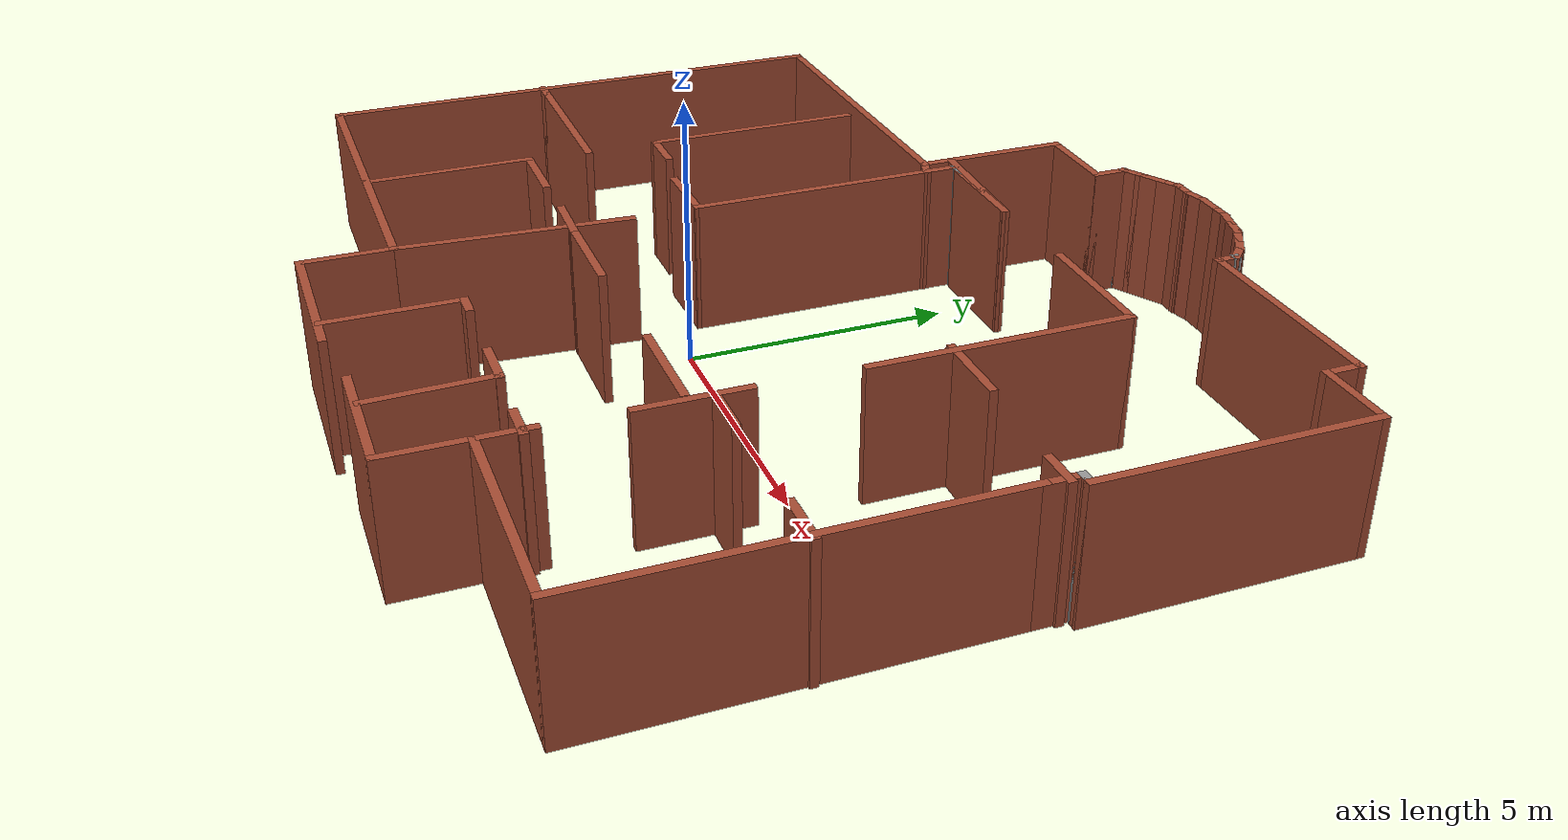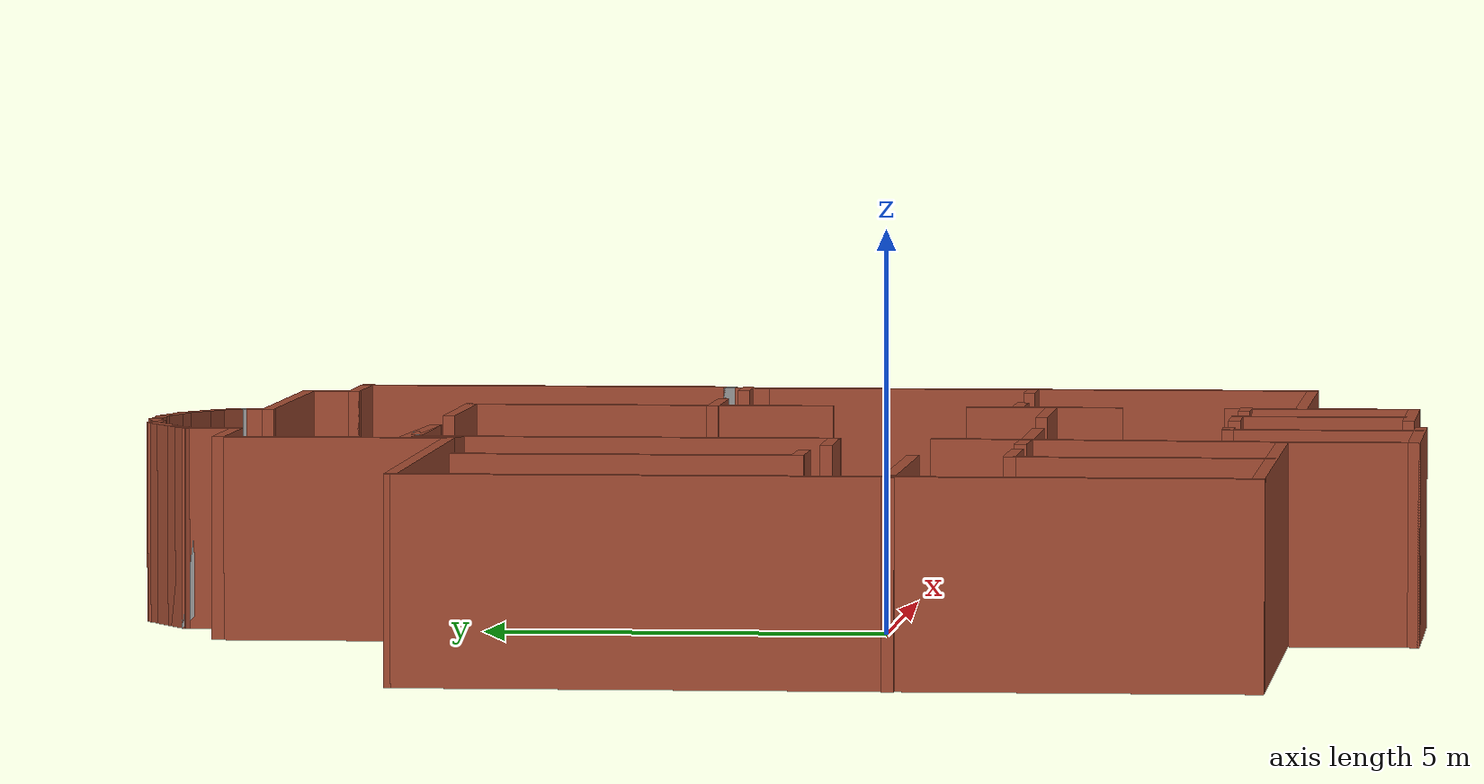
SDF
<?xml version='1.0'?>
<sdf version='1.6'>
  <model name='house'>
    <pose frame=''>0.638988 1.42948 0 0 -0 0</pose>
    <link name='Wall_10'>
      <collision name='Wall_10_Collision'>
        <geometry>
          <box>
            <size>2.5 0.15 2.5</size>
          </box>
        </geometry>
        <pose frame=''>0 0 1.25 0 -0 0</pose>
      </collision>
      <visual name='Wall_10_Visual'>
        <pose frame=''>0 0 1.25 0 -0 0</pose>
        <geometry>
          <box>
            <size>2.5 0.15 2.5</size>
          </box>
        </geometry>
        <material>
          <script>
            <uri>file://media/materials/scripts/gazebo.material</uri>
            <name>Gazebo/Bricks</name>
          </script>
          <ambient>1 1 1 1</ambient>
        </material>
        <meta>
          <layer>0</layer>
        </meta>
      </visual>
      <pose frame=''>4.57287 -6.59565 0 0 -0 1.5708</pose>
    </link>
    <link name='Wall_12'>
      <collision name='Wall_12_Collision'>
        <geometry>
          <box>
            <size>4 0.15 2.5</size>
          </box>
        </geometry>
        <pose frame=''>0 0 1.25 0 -0 0</pose>
      </collision>
      <visual name='Wall_12_Visual'>
        <pose frame=''>0 0 1.25 0 -0 0</pose>
        <geometry>
          <box>
            <size>4 0.15 2.5</size>
          </box>
        </geometry>
        <material>
          <script>
            <uri>file://media/materials/scripts/gazebo.material</uri>
            <name>Gazebo/Bricks</name>
          </script>
          <ambient>1 1 1 1</ambient>
        </material>
        <meta>
          <layer>0</layer>
        </meta>
      </visual>
      <pose frame=''>6.50485 -6.32832 0 0 -0 0</pose>
    </link>
    <link name='Wall_13'>
      <collision name='Wall_13_Collision'>
        <geometry>
          <box>
            <size>7.25 0.15 2.5</size>
          </box>
        </geometry>
        <pose frame=''>0 0 1.25 0 -0 0</pose>
      </collision>
      <visual name='Wall_13_Visual'>
        <pose frame=''>0 0 1.25 0 -0 0</pose>
        <geometry>
          <box>
            <size>7.25 0.15 2.5</size>
          </box>
        </geometry>
        <material>
          <script>
            <uri>file://media/materials/scripts/gazebo.material</uri>
            <name>Gazebo/Bricks</name>
          </script>
          <ambient>1 1 1 1</ambient>
        </material>
        <meta>
          <layer>0</layer>
        </meta>
      </visual>
      <pose frame=''>8.42985 -2.77832 0 0 -0 1.5708</pose>
    </link>
    <link name='Wall_16'>
      <collision name='Wall_16_Collision'>
        <geometry>
          <box>
            <size>0.75 0.15 2.5</size>
          </box>
        </geometry>
        <pose frame=''>0 0 1.25 0 -0 0</pose>
      </collision>
      <visual name='Wall_16_Visual'>
        <pose frame=''>0 0 1.25 0 -0 0</pose>
        <geometry>
          <box>
            <size>0.75 0.15 2.5</size>
          </box>
        </geometry>
        <material>
          <script>
            <uri>file://media/materials/scripts/gazebo.material</uri>
            <name>Gazebo/Bricks</name>
          </script>
          <ambient>1 1 1 1</ambient>
        </material>
        <meta>
          <layer>0</layer>
        </meta>
      </visual>
      <pose frame=''>8.42985 1.07168 0 0 -0 1.5708</pose>
    </link>
    <link name='Wall_17'>
      <collision name='Wall_17_Collision'>
        <geometry>
          <box>
            <size>0.25 0.15 2.5</size>
          </box>
        </geometry>
        <pose frame=''>0 0 1.25 0 -0 0</pose>
      </collision>
      <visual name='Wall_17_Visual'>
        <pose frame=''>0 0 1.25 0 -0 0</pose>
        <geometry>
          <box>
            <size>0.25 0.15 2.5</size>
          </box>
        </geometry>
        <material>
          <script>
            <uri>file://media/materials/scripts/gazebo.material</uri>
            <name>Gazebo/Grey</name>
          </script>
          <ambient>1 1 1 1</ambient>
        </material>
        <meta>
          <layer>0</layer>
        </meta>
      </visual>
      <pose frame=''>8.47985 1.37168 0 0 -0 0</pose>
    </link>
    <link name='Wall_18'>
      <collision name='Wall_18_Collision'>
        <geometry>
          <box>
            <size>0.25 0.15 2.5</size>
          </box>
        </geometry>
        <pose frame=''>0 0 1.25 0 -0 0</pose>
      </collision>
      <visual name='Wall_18_Visual'>
        <pose frame=''>0 0 1.25 0 -0 0</pose>
        <geometry>
          <box>
            <size>0.25 0.15 2.5</size>
          </box>
        </geometry>
        <material>
          <script>
            <uri>file://media/materials/scripts/gazebo.material</uri>
            <name>Gazebo/Bricks</name>
          </script>
          <ambient>1 1 1 1</ambient>
        </material>
        <meta>
          <layer>0</layer>
        </meta>
      </visual>
      <pose frame=''>8.57985 1.37168 0 0 -0 0</pose>
    </link>
    <link name='Wall_19'>
      <collision name='Wall_19_Collision'>
        <geometry>
          <box>
            <size>5 0.15 2.5</size>
          </box>
        </geometry>
        <pose frame=''>0 0 1.25 0 -0 0</pose>
      </collision>
      <visual name='Wall_19_Visual'>
        <pose frame=''>0 0 1.25 0 -0 0</pose>
        <geometry>
          <box>
            <size>5 0.15 2.5</size>
          </box>
        </geometry>
        <material>
          <script>
            <uri>file://media/materials/scripts/gazebo.material</uri>
            <name>Gazebo/Bricks</name>
          </script>
          <ambient>1 1 1 1</ambient>
        </material>
        <meta>
          <layer>0</layer>
        </meta>
      </visual>
      <pose frame=''>8.62985 3.79668 0 0 -0 1.5708</pose>
    </link>
    <link name='Wall_2'>
      <collision name='Wall_2_Collision'>
        <geometry>
          <box>
            <size>10.25 0.15 2.5</size>
          </box>
        </geometry>
        <pose frame=''>0 0 1.25 0 -0 0</pose>
      </collision>
      <visual name='Wall_2_Visual'>
        <pose frame=''>0 0 1.25 0 -0 0</pose>
        <geometry>
          <box>
            <size>10.25 0.15 2.5</size>
          </box>
        </geometry>
        <material>
          <script>
            <uri>file://media/materials/scripts/gazebo.material</uri>
            <name>Gazebo/Bricks</name>
          </script>
          <ambient>1 1 1 1</ambient>
        </material>
        <meta>
          <layer>0</layer>
        </meta>
      </visual>
      <pose frame=''>-8.57701 -1.31719 0 0 -0 -1.5708</pose>
    </link>
    <link name='Wall_20'>
      <collision name='Wall_20_Collision'>
        <geometry>
          <box>
            <size>1.5 0.15 2.5</size>
          </box>
        </geometry>
        <pose frame=''>0 0 1.25 0 -0 0</pose>
      </collision>
      <visual name='Wall_20_Visual'>
        <pose frame=''>0 0 1.25 0 -0 0</pose>
        <geometry>
          <box>
            <size>1.5 0.15 2.5</size>
          </box>
        </geometry>
        <material>
          <script>
            <uri>file://media/materials/scripts/gazebo.material</uri>
            <name>Gazebo/Bricks</name>
          </script>
          <ambient>1 1 1 1</ambient>
        </material>
        <meta>
          <layer>0</layer>
        </meta>
      </visual>
      <pose frame=''>7.95485 6.22168 0 0 -0 3.14159</pose>
    </link>
    <link name='Wall_21'>
      <collision name='Wall_21_Collision'>
        <geometry>
          <box>
            <size>0.75 0.15 2.5</size>
          </box>
        </geometry>
        <pose frame=''>0 0 1.25 0 -0 0</pose>
      </collision>
      <visual name='Wall_21_Visual'>
        <pose frame=''>0 0 1.25 0 -0 0</pose>
        <geometry>
          <box>
            <size>0.75 0.15 2.5</size>
          </box>
        </geometry>
        <material>
          <script>
            <uri>file://media/materials/scripts/gazebo.material</uri>
            <name>Gazebo/Bricks</name>
          </script>
          <ambient>1 1 1 1</ambient>
        </material>
        <meta>
          <layer>0</layer>
        </meta>
      </visual>
      <pose frame=''>7.27985 6.52168 0 0 -0 1.5708</pose>
    </link>
    <link name='Wall_22'>
      <collision name='Wall_22_Collision'>
        <geometry>
          <box>
            <size>4 0.15 2.5</size>
          </box>
        </geometry>
        <pose frame=''>0 0 1.25 0 -0 0</pose>
      </collision>
      <visual name='Wall_22_Visual'>
        <pose frame=''>0 0 1.25 0 -0 0</pose>
        <geometry>
          <box>
            <size>4 0.15 2.5</size>
          </box>
        </geometry>
        <material>
          <script>
            <uri>file://media/materials/scripts/gazebo.material</uri>
            <name>Gazebo/Bricks</name>
          </script>
          <ambient>1 1 1 1</ambient>
        </material>
        <meta>
          <layer>0</layer>
        </meta>
      </visual>
      <pose frame=''>5.35485 6.82168 0 0 -0 3.14159</pose>
    </link>
    <link name='Wall_23'>
      <collision name='Wall_23_Collision'>
        <geometry>
          <box>
            <size>0.5 0.15 2.5</size>
          </box>
        </geometry>
        <pose frame=''>0 0 1.25 0 -0 0</pose>
      </collision>
      <visual name='Wall_23_Visual'>
        <pose frame=''>0 0 1.25 0 -0 0</pose>
        <geometry>
          <box>
            <size>0.5 0.15 2.5</size>
          </box>
        </geometry>
        <material>
          <script>
            <uri>file://media/materials/scripts/gazebo.material</uri>
            <name>Gazebo/Bricks</name>
          </script>
          <ambient>1 1 1 1</ambient>
        </material>
        <meta>
          <layer>0</layer>
        </meta>
      </visual>
      <pose frame=''>3.42985 6.99668 0 0 -0 1.5708</pose>
    </link>
    <link name='Wall_24'>
      <collision name='Wall_24_Collision'>
        <geometry>
          <box>
            <size>0.15 0.15 2.5</size>
          </box>
        </geometry>
        <pose frame=''>0 0 1.25 0 -0 0</pose>
      </collision>
      <visual name='Wall_24_Visual'>
        <pose frame=''>0 0 1.25 0 -0 0</pose>
        <geometry>
          <box>
            <size>0.15 0.15 2.5</size>
          </box>
        </geometry>
        <material>
          <script>
            <uri>file://media/materials/scripts/gazebo.material</uri>
            <name>Gazebo/Grey</name>
          </script>
          <ambient>1 1 1 1</ambient>
        </material>
        <meta>
          <layer>0</layer>
        </meta>
      </visual>
      <pose frame=''>3.42985 7.17168 0 0 -0 0</pose>
    </link>
    <link name='Wall_26'>
      <collision name='Wall_26_Collision'>
        <geometry>
          <box>
            <size>0.15 0.15 2.5</size>
          </box>
        </geometry>
        <pose frame=''>0 0 1.25 0 -0 0</pose>
      </collision>
      <visual name='Wall_26_Visual'>
        <pose frame=''>0 0 1.25 0 -0 0</pose>
        <geometry>
          <box>
            <size>0.15 0.15 2.5</size>
          </box>
        </geometry>
        <material>
          <script>
            <uri>file://media/materials/scripts/gazebo.material</uri>
            <name>Gazebo/Bricks</name>
          </script>
          <ambient>1 1 1 1</ambient>
        </material>
        <meta>
          <layer>0</layer>
        </meta>
      </visual>
      <pose frame=''>3.42985 7.17168 0 0 -0 0</pose>
    </link>
    <link name='Wall_27'>
      <collision name='Wall_27_Collision'>
        <geometry>
          <box>
            <size>0.5 0.15 2.5</size>
          </box>
        </geometry>
        <pose frame=''>0 0 1.25 0 -0 0</pose>
      </collision>
      <visual name='Wall_27_Visual'>
        <pose frame=''>0 0 1.25 0 -0 0</pose>
        <geometry>
          <box>
            <size>0.5 0.15 2.5</size>
          </box>
        </geometry>
        <material>
          <script>
            <uri>file://media/materials/scripts/gazebo.material</uri>
            <name>Gazebo/Bricks</name>
          </script>
          <ambient>1 1 1 1</ambient>
        </material>
        <meta>
          <layer>0</layer>
        </meta>
      </visual>
      <pose frame=''>3.3061 7.29542 0 0 -0 2.35619</pose>
    </link>
    <link name='Wall_28'>
      <collision name='Wall_28_Collision'>
        <geometry>
          <box>
            <size>0.5 0.15 2.5</size>
          </box>
        </geometry>
        <pose frame=''>0 0 1.25 0 -0 0</pose>
      </collision>
      <visual name='Wall_28_Visual'>
        <pose frame=''>0 0 1.25 0 -0 0</pose>
        <geometry>
          <box>
            <size>0.5 0.15 2.5</size>
          </box>
        </geometry>
        <material>
          <script>
            <uri>file://media/materials/scripts/gazebo.material</uri>
            <name>Gazebo/Bricks</name>
          </script>
          <ambient>1 1 1 1</ambient>
        </material>
        <meta>
          <layer>0</layer>
        </meta>
      </visual>
      <pose frame=''>3.03081 7.50667 0 0 -0 2.61799</pose>
    </link>
    <link name='Wall_29'>
      <collision name='Wall_29_Collision'>
        <geometry>
          <box>
            <size>0.5 0.15 2.5</size>
          </box>
        </geometry>
        <pose frame=''>0 0 1.25 0 -0 0</pose>
      </collision>
      <visual name='Wall_29_Visual'>
        <pose frame=''>0 0 1.25 0 -0 0</pose>
        <geometry>
          <box>
            <size>0.5 0.15 2.5</size>
          </box>
        </geometry>
        <material>
          <script>
            <uri>file://media/materials/scripts/gazebo.material</uri>
            <name>Gazebo/Bricks</name>
          </script>
          <ambient>1 1 1 1</ambient>
        </material>
        <meta>
          <layer>0</layer>
        </meta>
      </visual>
      <pose frame=''>2.7277 7.68167 0 0 -0 2.61799</pose>
    </link>
    <link name='Wall_3'>
      <collision name='Wall_3_Collision'>
        <geometry>
          <box>
            <size>6.75 0.15 2.5</size>
          </box>
        </geometry>
        <pose frame=''>0 0 1.25 0 -0 0</pose>
      </collision>
      <visual name='Wall_3_Visual'>
        <pose frame=''>0 0 1.25 0 -0 0</pose>
        <geometry>
          <box>
            <size>6.75 0.15 2.5</size>
          </box>
        </geometry>
        <material>
          <script>
            <uri>file://media/materials/scripts/gazebo.material</uri>
            <name>Gazebo/Bricks</name>
          </script>
          <ambient>1 1 1 1</ambient>
        </material>
        <meta>
          <layer>0</layer>
        </meta>
      </visual>
      <pose frame=''>-5.27701 -6.36719 0 0 -0 0</pose>
    </link>
    <link name='Wall_31'>
      <collision name='Wall_31_Collision'>
        <geometry>
          <box>
            <size>0.5 0.15 2.5</size>
          </box>
        </geometry>
        <pose frame=''>0 0 1.25 0 -0 0</pose>
      </collision>
      <visual name='Wall_31_Visual'>
        <pose frame=''>0 0 1.25 0 -0 0</pose>
        <geometry>
          <box>
            <size>0.5 0.15 2.5</size>
          </box>
        </geometry>
        <material>
          <script>
            <uri>file://media/materials/scripts/gazebo.material</uri>
            <name>Gazebo/Bricks</name>
          </script>
          <ambient>1 1 1 1</ambient>
        </material>
        <meta>
          <layer>0</layer>
        </meta>
      </visual>
      <pose frame=''>2.40711 7.81446 0 0 -0 2.87979</pose>
    </link>
    <link name='Wall_32'>
      <collision name='Wall_32_Collision'>
        <geometry>
          <box>
            <size>0.5 0.15 2.5</size>
          </box>
        </geometry>
        <pose frame=''>0 0 1.25 0 -0 0</pose>
      </collision>
      <visual name='Wall_32_Visual'>
        <pose frame=''>0 0 1.25 0 -0 0</pose>
        <geometry>
          <box>
            <size>0.5 0.15 2.5</size>
          </box>
        </geometry>
        <material>
          <script>
            <uri>file://media/materials/scripts/gazebo.material</uri>
            <name>Gazebo/Bricks</name>
          </script>
          <ambient>1 1 1 1</ambient>
        </material>
        <meta>
          <layer>0</layer>
        </meta>
      </visual>
      <pose frame=''>2.06903 7.90505 0 0 -0 2.87979</pose>
    </link>
    <link name='Wall_33'>
      <collision name='Wall_33_Collision'>
        <geometry>
          <box>
            <size>0.5 0.15 2.5</size>
          </box>
        </geometry>
        <pose frame=''>0 0 1.25 0 -0 0</pose>
      </collision>
      <visual name='Wall_33_Visual'>
        <pose frame=''>0 0 1.25 0 -0 0</pose>
        <geometry>
          <box>
            <size>0.5 0.15 2.5</size>
          </box>
        </geometry>
        <material>
          <script>
            <uri>file://media/materials/scripts/gazebo.material</uri>
            <name>Gazebo/Bricks</name>
          </script>
          <ambient>1 1 1 1</ambient>
        </material>
        <meta>
          <layer>0</layer>
        </meta>
      </visual>
      <pose frame=''>1.72499 7.95034 0 0 -0 3.14159</pose>
    </link>
    <link name='Wall_34'>
      <collision name='Wall_34_Collision'>
        <geometry>
          <box>
            <size>0.5 0.15 2.5</size>
          </box>
        </geometry>
        <pose frame=''>0 0 1.25 0 -0 0</pose>
      </collision>
      <visual name='Wall_34_Visual'>
        <pose frame=''>0 0 1.25 0 -0 0</pose>
        <geometry>
          <box>
            <size>0.5 0.15 2.5</size>
          </box>
        </geometry>
        <material>
          <script>
            <uri>file://media/materials/scripts/gazebo.material</uri>
            <name>Gazebo/Bricks</name>
          </script>
          <ambient>1 1 1 1</ambient>
        </material>
        <meta>
          <layer>0</layer>
        </meta>
      </visual>
      <pose frame=''>1.37499 7.95034 0 0 -0 3.14159</pose>
    </link>
    <link name='Wall_35'>
      <collision name='Wall_35_Collision'>
        <geometry>
          <box>
            <size>0.5 0.15 2.5</size>
          </box>
        </geometry>
        <pose frame=''>0 0 1.25 0 -0 0</pose>
      </collision>
      <visual name='Wall_35_Visual'>
        <pose frame=''>0 0 1.25 0 -0 0</pose>
        <geometry>
          <box>
            <size>0.5 0.15 2.5</size>
          </box>
        </geometry>
        <material>
          <script>
            <uri>file://media/materials/scripts/gazebo.material</uri>
            <name>Gazebo/Bricks</name>
          </script>
          <ambient>1 1 1 1</ambient>
        </material>
        <meta>
          <layer>0</layer>
        </meta>
      </visual>
      <pose frame=''>1.03096 7.90505 0 0 -0 -2.87979</pose>
    </link>
    <link name='Wall_36'>
      <collision name='Wall_36_Collision'>
        <geometry>
          <box>
            <size>0.5 0.15 2.5</size>
          </box>
        </geometry>
        <pose frame=''>0 0 1.25 0 -0 0</pose>
      </collision>
      <visual name='Wall_36_Visual'>
        <pose frame=''>0 0 1.25 0 -0 0</pose>
        <geometry>
          <box>
            <size>0.5 0.15 2.5</size>
          </box>
        </geometry>
        <material>
          <script>
            <uri>file://media/materials/scripts/gazebo.material</uri>
            <name>Gazebo/Bricks</name>
          </script>
          <ambient>1 1 1 1</ambient>
        </material>
        <meta>
          <layer>0</layer>
        </meta>
      </visual>
      <pose frame=''>0.686921 7.85975 0 0 -0 3.14159</pose>
    </link>
    <link name='Wall_37'>
      <collision name='Wall_37_Collision'>
        <geometry>
          <box>
            <size>0.5 0.15 2.5</size>
          </box>
        </geometry>
        <pose frame=''>0 0 1.25 0 -0 0</pose>
      </collision>
      <visual name='Wall_37_Visual'>
        <pose frame=''>0 0 1.25 0 -0 0</pose>
        <geometry>
          <box>
            <size>0.5 0.15 2.5</size>
          </box>
        </geometry>
        <material>
          <script>
            <uri>file://media/materials/scripts/gazebo.material</uri>
            <name>Gazebo/Bricks</name>
          </script>
          <ambient>1 1 1 1</ambient>
        </material>
        <meta>
          <layer>0</layer>
        </meta>
      </visual>
      <pose frame=''>0.360366 7.77225 0 0 -0 -2.61799</pose>
    </link>
    <link name='Wall_38'>
      <collision name='Wall_38_Collision'>
        <geometry>
          <box>
            <size>0.5 0.15 2.5</size>
          </box>
        </geometry>
        <pose frame=''>0 0 1.25 0 -0 0</pose>
      </collision>
      <visual name='Wall_38_Visual'>
        <pose frame=''>0 0 1.25 0 -0 0</pose>
        <geometry>
          <box>
            <size>0.5 0.15 2.5</size>
          </box>
        </geometry>
        <material>
          <script>
            <uri>file://media/materials/scripts/gazebo.material</uri>
            <name>Gazebo/Bricks</name>
          </script>
          <ambient>1 1 1 1</ambient>
        </material>
        <meta>
          <layer>0</layer>
        </meta>
      </visual>
      <pose frame=''>0.057257 7.59725 0 0 -0 -2.61799</pose>
    </link>
    <link name='Wall_39'>
      <collision name='Wall_39_Collision'>
        <geometry>
          <box>
            <size>0.25 0.15 2.5</size>
          </box>
        </geometry>
        <pose frame=''>0 0 1.25 0 -0 0</pose>
      </collision>
      <visual name='Wall_39_Visual'>
        <pose frame=''>0 0 1.25 0 -0 0</pose>
        <geometry>
          <box>
            <size>0.25 0.15 2.5</size>
          </box>
        </geometry>
        <material>
          <script>
            <uri>file://media/materials/scripts/gazebo.material</uri>
            <name>Gazebo/Bricks</name>
          </script>
          <ambient>1 1 1 1</ambient>
        </material>
        <meta>
          <layer>0</layer>
        </meta>
      </visual>
      <pose frame=''>-0.137599 7.48475 0 0 -0 -2.61799</pose>
    </link>
    <link name='Wall_4'>
      <collision name='Wall_4_Collision'>
        <geometry>
          <box>
            <size>1.75 0.15 2.5</size>
          </box>
        </geometry>
        <pose frame=''>0 0 1.25 0 -0 0</pose>
      </collision>
      <visual name='Wall_4_Visual'>
        <pose frame=''>0 0 1.25 0 -0 0</pose>
        <geometry>
          <box>
            <size>1.75 0.15 2.5</size>
          </box>
        </geometry>
        <material>
          <script>
            <uri>file://media/materials/scripts/gazebo.material</uri>
            <name>Gazebo/Bricks</name>
          </script>
          <ambient>1 1 1 1</ambient>
        </material>
        <meta>
          <layer>0</layer>
        </meta>
      </visual>
      <pose frame=''>-1.97701 -7.1672 0 0 -0 -1.5708</pose>
    </link>
    <link name='Wall_40'>
      <collision name='Wall_40_Collision'>
        <geometry>
          <box>
            <size>0.5 0.15 2.5</size>
          </box>
        </geometry>
        <pose frame=''>0 0 1.25 0 -0 0</pose>
      </collision>
      <visual name='Wall_40_Visual'>
        <pose frame=''>0 0 1.25 0 -0 0</pose>
        <geometry>
          <box>
            <size>0.5 0.15 2.5</size>
          </box>
        </geometry>
        <material>
          <script>
            <uri>file://media/materials/scripts/gazebo.material</uri>
            <name>Gazebo/Bricks</name>
          </script>
          <ambient>1 1 1 1</ambient>
        </material>
        <meta>
          <layer>0</layer>
        </meta>
      </visual>
      <pose frame=''>-0.332454 7.37225 0 0 -0 -2.61799</pose>
    </link>
    <link name='Wall_41'>
      <collision name='Wall_41_Collision'>
        <geometry>
          <box>
            <size>0.15 0.15 2.5</size>
          </box>
        </geometry>
        <pose frame=''>0 0 1.25 0 -0 0</pose>
      </collision>
      <visual name='Wall_41_Visual'>
        <pose frame=''>0 0 1.25 0 -0 0</pose>
        <geometry>
          <box>
            <size>0.15 0.15 2.5</size>
          </box>
        </geometry>
        <material>
          <script>
            <uri>file://media/materials/scripts/gazebo.material</uri>
            <name>Gazebo/Grey</name>
          </script>
          <ambient>1 1 1 1</ambient>
        </material>
        <meta>
          <layer>0</layer>
        </meta>
      </visual>
      <pose frame=''>-0.484009 7.28475 0 0 -0 0</pose>
    </link>
    <link name='Wall_42'>
      <collision name='Wall_42_Collision'>
        <geometry>
          <box>
            <size>0.75 0.15 2.5</size>
          </box>
        </geometry>
        <pose frame=''>0 0 1.25 0 -0 0</pose>
      </collision>
      <visual name='Wall_42_Visual'>
        <pose frame=''>0 0 1.25 0 -0 0</pose>
        <geometry>
          <box>
            <size>0.75 0.15 2.5</size>
          </box>
        </geometry>
        <material>
          <script>
            <uri>file://media/materials/scripts/gazebo.material</uri>
            <name>Gazebo/Bricks</name>
          </script>
          <ambient>1 1 1 1</ambient>
        </material>
        <meta>
          <layer>0</layer>
        </meta>
      </visual>
      <pose frame=''>-0.484009 6.98475 0 0 -0 -1.5708</pose>
    </link>
    <link name='Wall_43'>
      <collision name='Wall_43_Collision'>
        <geometry>
          <box>
            <size>1.75 0.15 2.5</size>
          </box>
        </geometry>
        <pose frame=''>0 0 1.25 0 -0 0</pose>
      </collision>
      <visual name='Wall_43_Visual'>
        <pose frame=''>0 0 1.25 0 -0 0</pose>
        <geometry>
          <box>
            <size>1.75 0.15 2.5</size>
          </box>
        </geometry>
        <material>
          <script>
            <uri>file://media/materials/scripts/gazebo.material</uri>
            <name>Gazebo/Bricks</name>
          </script>
          <ambient>1 1 1 1</ambient>
        </material>
        <meta>
          <layer>0</layer>
        </meta>
      </visual>
      <pose frame=''>-1.28401 6.68475 0 0 -0 3.14159</pose>
    </link>
    <link name='Wall_44'>
      <collision name='Wall_44_Collision'>
        <geometry>
          <box>
            <size>3 0.15 2.5</size>
          </box>
        </geometry>
        <pose frame=''>0 0 1.25 0 -0 0</pose>
      </collision>
      <visual name='Wall_44_Visual'>
        <pose frame=''>0 0 1.25 0 -0 0</pose>
        <geometry>
          <box>
            <size>3 0.15 2.5</size>
          </box>
        </geometry>
        <material>
          <script>
            <uri>file://media/materials/scripts/gazebo.material</uri>
            <name>Gazebo/Bricks</name>
          </script>
          <ambient>1 1 1 1</ambient>
        </material>
        <meta>
          <layer>0</layer>
        </meta>
      </visual>
      <pose frame=''>-2.08401 5.25975 0 0 -0 -1.5708</pose>
    </link>
    <link name='Wall_45'>
      <collision name='Wall_45_Collision'>
        <geometry>
          <box>
            <size>6.6438 0.15 2.5</size>
          </box>
        </geometry>
        <pose frame=''>0 0 1.25 0 -0 0</pose>
      </collision>
      <visual name='Wall_45_Visual'>
        <pose frame=''>0 0 1.25 0 -0 0</pose>
        <geometry>
          <box>
            <size>6.6438 0.15 2.5</size>
          </box>
        </geometry>
        <material>
          <script>
            <uri>file://media/materials/scripts/gazebo.material</uri>
            <name>Gazebo/Bricks</name>
          </script>
          <ambient>1 1 1 1</ambient>
        </material>
        <meta>
          <layer>0</layer>
        </meta>
      </visual>
      <pose frame=''>-5.33051 3.78378 0 0 -0 -3.12589</pose>
    </link>
    <link name='Wall_47'>
      <collision name='Wall_47_Collision'>
        <geometry>
          <box>
            <size>4.75 0.15 2.5</size>
          </box>
        </geometry>
        <pose frame=''>0 0 1.25 0 -0 0</pose>
      </collision>
      <visual name='Wall_47_Visual'>
        <pose frame=''>0 0 1.25 0 -0 0</pose>
        <geometry>
          <box>
            <size>4.75 0.15 2.5</size>
          </box>
        </geometry>
        <material>
          <script>
            <uri>file://media/materials/scripts/gazebo.material</uri>
            <name>Gazebo/Bricks</name>
          </script>
          <ambient>1 1 1 1</ambient>
        </material>
        <meta>
          <layer>0</layer>
        </meta>
      </visual>
      <pose frame=''>-1.75782 1.42724 0 0 -0 1.5708</pose>
    </link>
    <link name='Wall_48'>
      <collision name='Wall_48_Collision'>
        <geometry>
          <box>
            <size>0.49345 0.15 2.5</size>
          </box>
        </geometry>
        <pose frame=''>0 0 1.25 0 -0 0</pose>
      </collision>
      <visual name='Wall_48_Visual'>
        <pose frame=''>0 0 1.25 0 -0 0</pose>
        <geometry>
          <box>
            <size>0.49345 0.15 2.5</size>
          </box>
        </geometry>
        <material>
          <script>
            <uri>file://media/materials/scripts/gazebo.material</uri>
            <name>Gazebo/Bricks</name>
          </script>
          <ambient>1 1 1 1</ambient>
        </material>
        <meta>
          <layer>0</layer>
        </meta>
      </visual>
      <pose frame=''>-1.92091 3.781 0 0 -0 2.82321</pose>
    </link>
    <link name='Wall_5'>
      <collision name='Wall_5_Collision'>
        <geometry>
          <box>
            <size>3 0.15 2.5</size>
          </box>
        </geometry>
        <pose frame=''>0 0 1.25 0 -0 0</pose>
      </collision>
      <visual name='Wall_5_Visual'>
        <pose frame=''>0 0 1.25 0 -0 0</pose>
        <geometry>
          <box>
            <size>3 0.15 2.5</size>
          </box>
        </geometry>
        <material>
          <script>
            <uri>file://media/materials/scripts/gazebo.material</uri>
            <name>Gazebo/Bricks</name>
          </script>
          <ambient>1 1 1 1</ambient>
        </material>
        <meta>
          <layer>0</layer>
        </meta>
      </visual>
      <pose frame=''>-0.55201 -7.9672 0 0 -0 0</pose>
    </link>
    <link name='Wall_50'>
      <collision name='Wall_50_Collision'>
        <geometry>
          <box>
            <size>2 0.15 2.5</size>
          </box>
        </geometry>
        <pose frame=''>0 0 1.25 0 -0 0</pose>
      </collision>
      <visual name='Wall_50_Visual'>
        <pose frame=''>0 0 1.25 0 -0 0</pose>
        <geometry>
          <box>
            <size>2 0.15 2.5</size>
          </box>
        </geometry>
        <material>
          <script>
            <uri>file://media/materials/scripts/gazebo.material</uri>
            <name>Gazebo/Bricks</name>
          </script>
          <ambient>1 1 1 1</ambient>
        </material>
        <meta>
          <layer>0</layer>
        </meta>
      </visual>
      <pose frame=''>-0.58948 4.29822 0 0 -0 0</pose>
    </link>
    <link name='Wall_52'>
      <collision name='Wall_52_Collision'>
        <geometry>
          <box>
            <size>0.75 0.15 2.5</size>
          </box>
        </geometry>
        <pose frame=''>0 0 1.25 0 -0 0</pose>
      </collision>
      <visual name='Wall_52_Visual'>
        <pose frame=''>0 0 1.25 0 -0 0</pose>
        <geometry>
          <box>
            <size>0.75 0.15 2.5</size>
          </box>
        </geometry>
        <material>
          <script>
            <uri>file://media/materials/scripts/gazebo.material</uri>
            <name>Gazebo/Bricks</name>
          </script>
          <ambient>1 1 1 1</ambient>
        </material>
        <meta>
          <layer>0</layer>
        </meta>
      </visual>
      <pose frame=''>-1.75782 4.02724 0 0 -0 1.5708</pose>
    </link>
    <link name='Wall_54'>
      <collision name='Wall_54_Collision'>
        <geometry>
          <box>
            <size>0.788769 0.15 2.5</size>
          </box>
        </geometry>
        <pose frame=''>0 0 1.25 0 -0 0</pose>
      </collision>
      <visual name='Wall_54_Visual'>
        <pose frame=''>0 0 1.25 0 -0 0</pose>
        <geometry>
          <box>
            <size>0.788769 0.15 2.5</size>
          </box>
        </geometry>
        <material>
          <script>
            <uri>file://media/materials/scripts/gazebo.material</uri>
            <name>Gazebo/Grey</name>
          </script>
          <ambient>1 1 1 1</ambient>
        </material>
        <meta>
          <layer>0</layer>
        </meta>
      </visual>
      <pose frame=''>-1.43844 4.32794 0 0 -0 -3.13941</pose>
    </link>
    <link name='Wall_56'>
      <collision name='Wall_56_Collision'>
        <geometry>
          <box>
            <size>2.51886 0.15 2.5</size>
          </box>
        </geometry>
        <pose frame=''>0 0 1.25 0 -0 0</pose>
      </collision>
      <visual name='Wall_56_Visual'>
        <pose frame=''>0 0 1.25 0 -0 0</pose>
        <geometry>
          <box>
            <size>2.51886 0.15 2.5</size>
          </box>
        </geometry>
        <material>
          <script>
            <uri>file://media/materials/scripts/gazebo.material</uri>
            <name>Gazebo/Bricks</name>
          </script>
          <ambient>1 1 1 1</ambient>
        </material>
        <meta>
          <layer>0</layer>
        </meta>
      </visual>
      <pose frame=''>-0.848029 4.34384 0 0 -0 -0.038531</pose>
    </link>
    <link name='Wall_58'>
      <collision name='Wall_58_Collision'>
        <geometry>
          <box>
            <size>2.5 0.15 2.5</size>
          </box>
        </geometry>
        <pose frame=''>0 0 1.25 0 -0 0</pose>
      </collision>
      <visual name='Wall_58_Visual'>
        <pose frame=''>0 0 1.25 0 -0 0</pose>
        <geometry>
          <box>
            <size>2.5 0.15 2.5</size>
          </box>
        </geometry>
        <material>
          <script>
            <uri>file://media/materials/scripts/gazebo.material</uri>
            <name>Gazebo/Bricks</name>
          </script>
          <ambient>1 1 1 1</ambient>
        </material>
        <meta>
          <layer>0</layer>
        </meta>
      </visual>
      <pose frame=''>3.49313 4.35905 0 0 -0 0</pose>
    </link>
    <link name='Wall_59'>
      <collision name='Wall_59_Collision'>
        <geometry>
          <box>
            <size>4.75 0.15 2.5</size>
          </box>
        </geometry>
        <pose frame=''>0 0 1.25 0 -0 0</pose>
      </collision>
      <visual name='Wall_59_Visual'>
        <pose frame=''>0 0 1.25 0 -0 0</pose>
        <geometry>
          <box>
            <size>4.75 0.15 2.5</size>
          </box>
        </geometry>
        <material>
          <script>
            <uri>file://media/materials/scripts/gazebo.material</uri>
            <name>Gazebo/Bricks</name>
          </script>
          <ambient>1 1 1 1</ambient>
        </material>
        <meta>
          <layer>0</layer>
        </meta>
      </visual>
      <pose frame=''>4.66812 2.05905 0 0 -0 -1.5708</pose>
    </link>
    <link name='Wall_61'>
      <collision name='Wall_61_Collision'>
        <geometry>
          <box>
            <size>1.5 0.15 2.5</size>
          </box>
        </geometry>
        <pose frame=''>0 0 1.25 0 -0 0</pose>
      </collision>
      <visual name='Wall_61_Visual'>
        <pose frame=''>0 0 1.25 0 -0 0</pose>
        <geometry>
          <box>
            <size>1.5 0.15 2.5</size>
          </box>
        </geometry>
        <material>
          <script>
            <uri>file://media/materials/scripts/gazebo.material</uri>
            <name>Gazebo/Bricks</name>
          </script>
          <ambient>1 1 1 1</ambient>
        </material>
        <meta>
          <layer>0</layer>
        </meta>
      </visual>
      <pose frame=''>5.24402 1.22605 0 0 -0 0</pose>
    </link>
    <link name='Wall_63'>
      <collision name='Wall_63_Collision'>
        <geometry>
          <box>
            <size>0.75 0.15 2.5</size>
          </box>
        </geometry>
        <pose frame=''>0 0 1.25 0 -0 0</pose>
      </collision>
      <visual name='Wall_63_Visual'>
        <pose frame=''>0 0 1.25 0 -0 0</pose>
        <geometry>
          <box>
            <size>0.75 0.15 2.5</size>
          </box>
        </geometry>
        <material>
          <script>
            <uri>file://media/materials/scripts/gazebo.material</uri>
            <name>Gazebo/Bricks</name>
          </script>
          <ambient>1 1 1 1</ambient>
        </material>
        <meta>
          <layer>0</layer>
        </meta>
      </visual>
      <pose frame=''>8.18453 1.1348 0 0 -0 0</pose>
    </link>
    <link name='Wall_65'>
      <collision name='Wall_65_Collision'>
        <geometry>
          <box>
            <size>2 0.15 2.5</size>
          </box>
        </geometry>
        <pose frame=''>0 0 1.25 0 -0 0</pose>
      </collision>
      <visual name='Wall_65_Visual'>
        <pose frame=''>0 0 1.25 0 -0 0</pose>
        <geometry>
          <box>
            <size>2 0.15 2.5</size>
          </box>
        </geometry>
        <material>
          <script>
            <uri>file://media/materials/scripts/gazebo.material</uri>
            <name>Gazebo/Bricks</name>
          </script>
          <ambient>1 1 1 1</ambient>
        </material>
        <meta>
          <layer>0</layer>
        </meta>
      </visual>
      <pose frame=''>4.61222 -3.04193 0 0 -0 -1.5708</pose>
    </link>
    <link name='Wall_67'>
      <collision name='Wall_67_Collision'>
        <geometry>
          <box>
            <size>1 0.15 2.5</size>
          </box>
        </geometry>
        <pose frame=''>0 0 1.25 0 -0 0</pose>
      </collision>
      <visual name='Wall_67_Visual'>
        <pose frame=''>0 0 1.25 0 -0 0</pose>
        <geometry>
          <box>
            <size>1 0.15 2.5</size>
          </box>
        </geometry>
        <material>
          <script>
            <uri>file://media/materials/scripts/gazebo.material</uri>
            <name>Gazebo/Bricks</name>
          </script>
          <ambient>1 1 1 1</ambient>
        </material>
        <meta>
          <layer>0</layer>
        </meta>
      </visual>
      <pose frame=''>5.06367 -2.69883 0 0 -0 0</pose>
    </link>
    <link name='Wall_69'>
      <collision name='Wall_69_Collision'>
        <geometry>
          <box>
            <size>1 0.15 2.5</size>
          </box>
        </geometry>
        <pose frame=''>0 0 1.25 0 -0 0</pose>
      </collision>
      <visual name='Wall_69_Visual'>
        <pose frame=''>0 0 1.25 0 -0 0</pose>
        <geometry>
          <box>
            <size>1 0.15 2.5</size>
          </box>
        </geometry>
        <material>
          <script>
            <uri>file://media/materials/scripts/gazebo.material</uri>
            <name>Gazebo/Bricks</name>
          </script>
          <ambient>1 1 1 1</ambient>
        </material>
        <meta>
          <layer>0</layer>
        </meta>
      </visual>
      <pose frame=''>8.05252 -2.64593 0 0 -0 0</pose>
    </link>
    <link name='Wall_7'>
      <collision name='Wall_7_Collision'>
        <geometry>
          <box>
            <size>2.5 0.15 2.5</size>
          </box>
        </geometry>
        <pose frame=''>0 0 1.25 0 -0 0</pose>
      </collision>
      <visual name='Wall_7_Visual'>
        <pose frame=''>0 0 1.25 0 -0 0</pose>
        <geometry>
          <box>
            <size>2.5 0.15 2.5</size>
          </box>
        </geometry>
        <material>
          <script>
            <uri>file://media/materials/scripts/gazebo.material</uri>
            <name>Gazebo/Bricks</name>
          </script>
          <ambient>1 1 1 1</ambient>
        </material>
        <meta>
          <layer>0</layer>
        </meta>
      </visual>
      <pose frame=''>0.323217 -6.76457 0 0 -0 -1.5708</pose>
    </link>
    <link name='Wall_71'>
      <collision name='Wall_71_Collision'>
        <geometry>
          <box>
            <size>0.5 0.15 2.5</size>
          </box>
        </geometry>
        <pose frame=''>0 0 1.25 0 -0 0</pose>
      </collision>
      <visual name='Wall_71_Visual'>
        <pose frame=''>0 0 1.25 0 -0 0</pose>
        <geometry>
          <box>
            <size>0.5 0.15 2.5</size>
          </box>
        </geometry>
        <material>
          <script>
            <uri>file://media/materials/scripts/gazebo.material</uri>
            <name>Gazebo/Bricks</name>
          </script>
          <ambient>1 1 1 1</ambient>
        </material>
        <meta>
          <layer>0</layer>
        </meta>
      </visual>
      <pose frame=''>0.498217 -5.58957 0 0 -0 0</pose>
    </link>
    <link name='Wall_73'>
      <collision name='Wall_73_Collision'>
        <geometry>
          <box>
            <size>1 0.15 2.5</size>
          </box>
        </geometry>
        <pose frame=''>0 0 1.25 0 -0 0</pose>
      </collision>
      <visual name='Wall_73_Visual'>
        <pose frame=''>0 0 1.25 0 -0 0</pose>
        <geometry>
          <box>
            <size>1 0.15 2.5</size>
          </box>
        </geometry>
        <material>
          <script>
            <uri>file://media/materials/scripts/gazebo.material</uri>
            <name>Gazebo/Bricks</name>
          </script>
          <ambient>1 1 1 1</ambient>
        </material>
        <meta>
          <layer>0</layer>
        </meta>
      </visual>
      <pose frame=''>2.54611 -5.59084 0 0 -0 0</pose>
    </link>
    <link name='Wall_74'>
      <collision name='Wall_74_Collision'>
        <geometry>
          <box>
            <size>2.2735 0.15 2.5</size>
          </box>
        </geometry>
        <pose frame=''>0 0 1.25 0 -0 0</pose>
      </collision>
      <visual name='Wall_74_Visual'>
        <pose frame=''>0 0 1.25 0 -0 0</pose>
        <geometry>
          <box>
            <size>2.2735 0.15 2.5</size>
          </box>
        </geometry>
        <material>
          <script>
            <uri>file://media/materials/scripts/gazebo.material</uri>
            <name>Gazebo/Bricks</name>
          </script>
          <ambient>1 1 1 1</ambient>
        </material>
        <meta>
          <layer>0</layer>
        </meta>
      </visual>
      <pose frame=''>2.98261 -6.65234 0 0 -0 -1.53831</pose>
    </link>
    <link name='Wall_76'>
      <collision name='Wall_76_Collision'>
        <geometry>
          <box>
            <size>0.75 0.15 2.5</size>
          </box>
        </geometry>
        <pose frame=''>0 0 1.25 0 -0 0</pose>
      </collision>
      <visual name='Wall_76_Visual'>
        <pose frame=''>0 0 1.25 0 -0 0</pose>
        <geometry>
          <box>
            <size>0.75 0.15 2.5</size>
          </box>
        </geometry>
        <material>
          <script>
            <uri>file://media/materials/scripts/gazebo.material</uri>
            <name>Gazebo/Bricks</name>
          </script>
          <ambient>1 1 1 1</ambient>
        </material>
        <meta>
          <layer>0</layer>
        </meta>
      </visual>
      <pose frame=''>4.34817 -5.62483 0 0 -0 0</pose>
    </link>
    <link name='Wall_78'>
      <collision name='Wall_78_Collision'>
        <geometry>
          <box>
            <size>2 0.15 2.5</size>
          </box>
        </geometry>
        <pose frame=''>0 0 1.25 0 -0 0</pose>
      </collision>
      <visual name='Wall_78_Visual'>
        <pose frame=''>0 0 1.25 0 -0 0</pose>
        <geometry>
          <box>
            <size>2 0.15 2.5</size>
          </box>
        </geometry>
        <material>
          <script>
            <uri>file://media/materials/scripts/gazebo.material</uri>
            <name>Gazebo/Bricks</name>
          </script>
          <ambient>1 1 1 1</ambient>
        </material>
        <meta>
          <layer>0</layer>
        </meta>
      </visual>
      <pose frame=''>-0.689449 -3.24194 0 0 -0 0</pose>
    </link>
    <link name='Wall_80'>
      <collision name='Wall_80_Collision'>
        <geometry>
          <box>
            <size>2 0.15 2.5</size>
          </box>
        </geometry>
        <pose frame=''>0 0 1.25 0 -0 0</pose>
      </collision>
      <visual name='Wall_80_Visual'>
        <pose frame=''>0 0 1.25 0 -0 0</pose>
        <geometry>
          <box>
            <size>2 0.15 2.5</size>
          </box>
        </geometry>
        <material>
          <script>
            <uri>file://media/materials/scripts/gazebo.material</uri>
            <name>Gazebo/Bricks</name>
          </script>
          <ambient>1 1 1 1</ambient>
        </material>
        <meta>
          <layer>0</layer>
        </meta>
      </visual>
      <pose frame=''>3.5161 -3.13614 0 0 -0 0</pose>
    </link>
    <link name='Wall_82'>
      <collision name='Wall_82_Collision'>
        <geometry>
          <box>
            <size>4.39393 0.15 2.5</size>
          </box>
        </geometry>
        <pose frame=''>0 0 1.25 0 -0 0</pose>
      </collision>
      <visual name='Wall_82_Visual'>
        <pose frame=''>0 0 1.25 0 -0 0</pose>
        <geometry>
          <box>
            <size>4.39393 0.15 2.5</size>
          </box>
        </geometry>
        <material>
          <script>
            <uri>file://media/materials/scripts/gazebo.material</uri>
            <name>Gazebo/Bricks</name>
          </script>
          <ambient>1 1 1 1</ambient>
        </material>
        <meta>
          <layer>0</layer>
        </meta>
      </visual>
      <pose frame=''>-1.84863 -4.24912 0 0 -0 -1.63133</pose>
    </link>
    <link name='Wall_84'>
      <collision name='Wall_84_Collision'>
        <geometry>
          <box>
            <size>4.25 0.15 2.5</size>
          </box>
        </geometry>
        <pose frame=''>0 0 1.25 0 -0 0</pose>
      </collision>
      <visual name='Wall_84_Visual'>
        <pose frame=''>0 0 1.25 0 -0 0</pose>
        <geometry>
          <box>
            <size>4.25 0.15 2.5</size>
          </box>
        </geometry>
        <material>
          <script>
            <uri>file://media/materials/scripts/gazebo.material</uri>
            <name>Gazebo/Bricks</name>
          </script>
          <ambient>1 1 1 1</ambient>
        </material>
        <meta>
          <layer>0</layer>
        </meta>
      </visual>
      <pose frame=''>-4.94715 1.34701 0 0 -0 -1.5708</pose>
    </link>
    <link name='Wall_85'>
      <collision name='Wall_85_Collision'>
        <geometry>
          <box>
            <size>1 0.15 2.5</size>
          </box>
        </geometry>
        <pose frame=''>0 0 1.25 0 -0 0</pose>
      </collision>
      <visual name='Wall_85_Visual'>
        <pose frame=''>0 0 1.25 0 -0 0</pose>
        <geometry>
          <box>
            <size>1 0.15 2.5</size>
          </box>
        </geometry>
        <material>
          <script>
            <uri>file://media/materials/scripts/gazebo.material</uri>
            <name>Gazebo/Bricks</name>
          </script>
          <ambient>1 1 1 1</ambient>
        </material>
        <meta>
          <layer>0</layer>
        </meta>
      </visual>
      <pose frame=''>-4.52215 -0.702988 0 0 -0 0</pose>
    </link>
    <link name='Wall_87'>
      <collision name='Wall_87_Collision'>
        <geometry>
          <box>
            <size>1.48792 0.15 2.5</size>
          </box>
        </geometry>
        <pose frame=''>0 0 1.25 0 -0 0</pose>
      </collision>
      <visual name='Wall_87_Visual'>
        <pose frame=''>0 0 1.25 0 -0 0</pose>
        <geometry>
          <box>
            <size>1.48792 0.15 2.5</size>
          </box>
        </geometry>
        <material>
          <script>
            <uri>file://media/materials/scripts/gazebo.material</uri>
            <name>Gazebo/Bricks</name>
          </script>
          <ambient>1 1 1 1</ambient>
        </material>
        <meta>
          <layer>0</layer>
        </meta>
      </visual>
      <pose frame=''>-2.42673 -0.880323 0 0 -0 0.011308</pose>
    </link>
    <link name='Wall_89'>
      <collision name='Wall_89_Collision'>
        <geometry>
          <box>
            <size>3.5 0.15 2.5</size>
          </box>
        </geometry>
        <pose frame=''>0 0 1.25 0 -0 0</pose>
      </collision>
      <visual name='Wall_89_Visual'>
        <pose frame=''>0 0 1.25 0 -0 0</pose>
        <geometry>
          <box>
            <size>3.5 0.15 2.5</size>
          </box>
        </geometry>
        <material>
          <script>
            <uri>file://media/materials/scripts/gazebo.material</uri>
            <name>Gazebo/Bricks</name>
          </script>
          <ambient>1 1 1 1</ambient>
        </material>
        <meta>
          <layer>0</layer>
        </meta>
      </visual>
      <pose frame=''>-6.60485 -2.07814 0 0 -0 0</pose>
    </link>
    <link name='Wall_9'>
      <collision name='Wall_9_Collision'>
        <geometry>
          <box>
            <size>2.5 0.15 2.5</size>
          </box>
        </geometry>
        <pose frame=''>0 0 1.25 0 -0 0</pose>
      </collision>
      <visual name='Wall_9_Visual'>
        <pose frame=''>0 0 1.25 0 -0 0</pose>
        <geometry>
          <box>
            <size>2.5 0.15 2.5</size>
          </box>
        </geometry>
        <material>
          <script>
            <uri>file://media/materials/scripts/gazebo.material</uri>
            <name>Gazebo/Bricks</name>
          </script>
          <ambient>1 1 1 1</ambient>
        </material>
        <meta>
          <layer>0</layer>
        </meta>
      </visual>
      <pose frame=''>3.39787 -7.77065 0 0 -0 0</pose>
    </link>
    <link name='Wall_91'>
      <collision name='Wall_91_Collision'>
        <geometry>
          <box>
            <size>3.25 0.15 2.5</size>
          </box>
        </geometry>
        <pose frame=''>0 0 1.25 0 -0 0</pose>
      </collision>
      <visual name='Wall_91_Visual'>
        <pose frame=''>0 0 1.25 0 -0 0</pose>
        <geometry>
          <box>
            <size>3.25 0.15 2.5</size>
          </box>
        </geometry>
        <material>
          <script>
            <uri>file://media/materials/scripts/gazebo.material</uri>
            <name>Gazebo/Bricks</name>
          </script>
          <ambient>1 1 1 1</ambient>
        </material>
        <meta>
          <layer>0</layer>
        </meta>
      </visual>
      <pose frame=''>-5.00005 -4.79194 0 0 -0 -1.5708</pose>
    </link>
    <link name='Wall_93'>
      <collision name='Wall_93_Collision'>
        <geometry>
          <box>
            <size>1.5 0.15 2.5</size>
          </box>
        </geometry>
        <pose frame=''>0 0 1.25 0 -0 0</pose>
      </collision>
      <visual name='Wall_93_Visual'>
        <pose frame=''>0 0 1.25 0 -0 0</pose>
        <geometry>
          <box>
            <size>1.5 0.15 2.5</size>
          </box>
        </geometry>
        <material>
          <script>
            <uri>file://media/materials/scripts/gazebo.material</uri>
            <name>Gazebo/Bricks</name>
          </script>
          <ambient>1 1 1 1</ambient>
        </material>
        <meta>
          <layer>0</layer>
        </meta>
      </visual>
      <pose frame=''>-4.32505 -3.24194 0 0 -0 0</pose>
    </link>
    <link name='Wall_95'>
      <collision name='Wall_95_Collision'>
        <geometry>
          <box>
            <size>1.12901 0.15 2.5</size>
          </box>
        </geometry>
        <pose frame=''>0 0 1.25 0 -0 0</pose>
      </collision>
      <visual name='Wall_95_Visual'>
        <pose frame=''>0 0 1.25 0 -0 0</pose>
        <geometry>
          <box>
            <size>1.12901 0.15 2.5</size>
          </box>
        </geometry>
        <material>
          <script>
            <uri>file://media/materials/scripts/gazebo.material</uri>
            <name>Gazebo/Bricks</name>
          </script>
          <ambient>1 1 1 1</ambient>
        </material>
        <meta>
          <layer>0</layer>
        </meta>
      </visual>
      <pose frame=''>-2.10377 -3.22871 0 0 -0 -0.02702</pose>
    </link>
    <link name='Wall_98'>
      <collision name='Wall_98_Collision'>
        <geometry>
          <box>
            <size>0.5 0.15 2.5</size>
          </box>
        </geometry>
        <pose frame=''>0 0 1.25 0 -0 0</pose>
      </collision>
      <visual name='Wall_98_Visual'>
        <pose frame=''>0 0 1.25 0 -0 0</pose>
        <geometry>
          <box>
            <size>0.5 0.15 2.5</size>
          </box>
        </geometry>
        <material>
          <script>
            <uri>file://media/materials/scripts/gazebo.material</uri>
            <name>Gazebo/Bricks</name>
          </script>
          <ambient>1 1 1 1</ambient>
        </material>
        <meta>
          <layer>0</layer>
        </meta>
      </visual>
      <pose frame=''>-8.45485 -2.07814 0 0 -0 3.14159</pose>
    </link>
    <static>1</static>
  </model>
</sdf>
